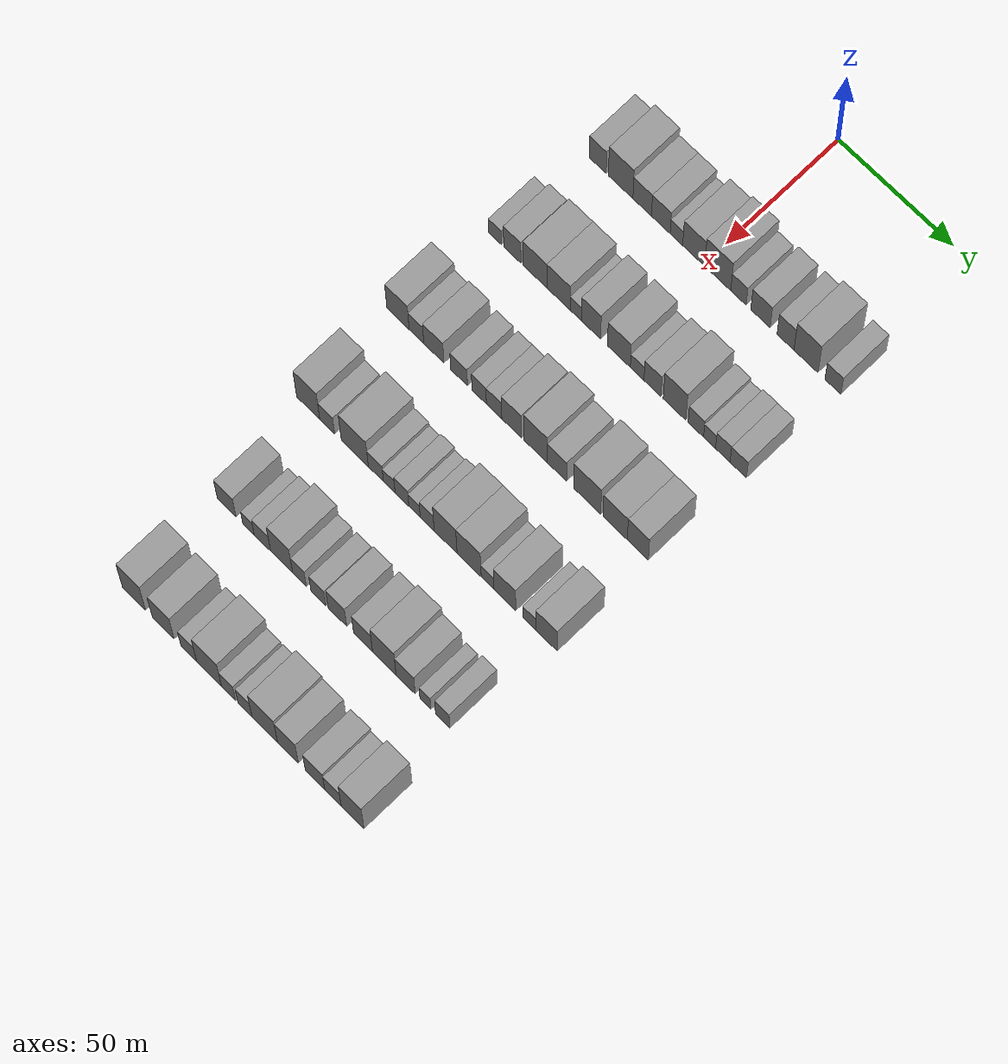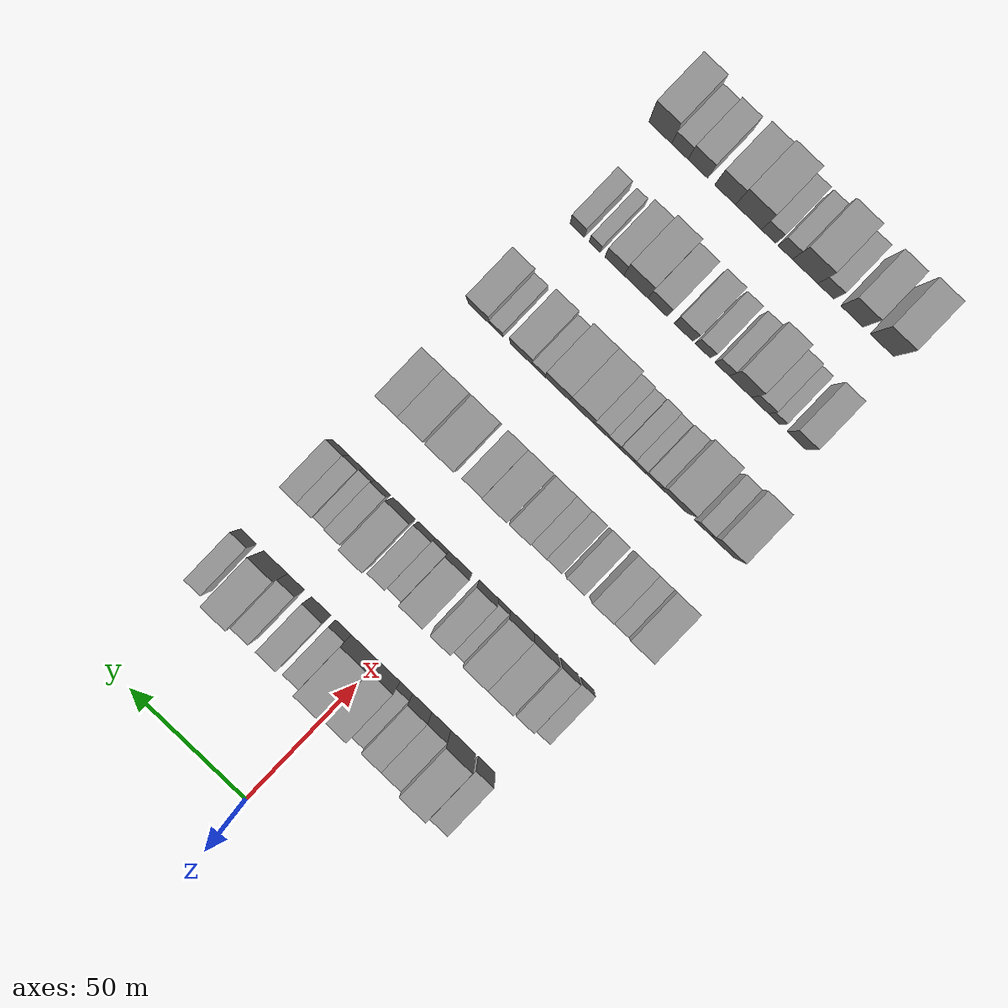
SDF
<sdf version="1.6">
 <world name="default">
  <model name="building_56">
   <static>1</static>
   <pose>50.0000 -46.7908 0 0.000000 0.000000 0.000000</pose>
   <link name="link">
    <pose>0 0 9.00 0 0 0</pose>
    <collision name="collision"><geometry><box><size>20.0000 7.4656 18.0000</size></box></geometry></collision>
    <visual name="visual">
     <cast_shadows>0</cast_shadows>
     <geometry><box><size>20.0000 7.4656 18.0000</size></box></geometry>
     <material>
      <script>
       <uri>model://grey_wall/materials/scripts</uri>
       <uri>model://grey_wall/materials/textures</uri>
       <name>vrc/grey_wall</name>
      </script>
     </material>
    </visual>
   </link>
  </model>
  <model name="building_57">
   <static>1</static>
   <pose>50.0000 -36.6233 0 0.000000 0.000000 0.000000</pose>
   <link name="link">
    <pose>0 0 12.00 0 0 0</pose>
    <collision name="collision"><geometry><box><size>20.0000 10.8695 24.0000</size></box></geometry></collision>
    <visual name="visual">
     <cast_shadows>0</cast_shadows>
     <geometry><box><size>20.0000 10.8695 24.0000</size></box></geometry>
     <material>
      <script>
       <uri>model://grey_wall/materials/scripts</uri>
       <uri>model://grey_wall/materials/textures</uri>
       <name>vrc/grey_wall</name>
      </script>
     </material>
    </visual>
   </link>
  </model>
  <model name="building_58">
   <static>1</static>
   <pose>50.0000 -27.0975 0 0.000000 0.000000 0.000000</pose>
   <link name="link">
    <pose>0 0 9.00 0 0 0</pose>
    <collision name="collision"><geometry><box><size>20.0000 8.1821 18.0000</size></box></geometry></collision>
    <visual name="visual">
     <cast_shadows>0</cast_shadows>
     <geometry><box><size>20.0000 8.1821 18.0000</size></box></geometry>
     <material>
      <script>
       <uri>model://grey_wall/materials/scripts</uri>
       <uri>model://grey_wall/materials/textures</uri>
       <name>vrc/grey_wall</name>
      </script>
     </material>
    </visual>
   </link>
  </model>
  <model name="building_59">
   <static>1</static>
   <pose>50.0000 -18.8867 0 0.000000 0.000000 0.000000</pose>
   <link name="link">
    <pose>0 0 9.00 0 0 0</pose>
    <collision name="collision"><geometry><box><size>20.0000 8.2396 18.0000</size></box></geometry></collision>
    <visual name="visual">
     <cast_shadows>0</cast_shadows>
     <geometry><box><size>20.0000 8.2396 18.0000</size></box></geometry>
     <material>
      <script>
       <uri>model://grey_wall/materials/scripts</uri>
       <uri>model://grey_wall/materials/textures</uri>
       <name>vrc/grey_wall</name>
      </script>
     </material>
    </visual>
   </link>
  </model>
  <model name="building_60">
   <static>1</static>
   <pose>50.0000 -12.0094 0 0.000000 0.000000 0.000000</pose>
   <link name="link">
    <pose>0 0 6.00 0 0 0</pose>
    <collision name="collision"><geometry><box><size>20.0000 5.5149 12.0000</size></box></geometry></collision>
    <visual name="visual">
     <cast_shadows>0</cast_shadows>
     <geometry><box><size>20.0000 5.5149 12.0000</size></box></geometry>
     <material>
      <script>
       <uri>model://grey_wall/materials/scripts</uri>
       <uri>model://grey_wall/materials/textures</uri>
       <name>vrc/grey_wall</name>
      </script>
     </material>
    </visual>
   </link>
  </model>
  <model name="building_61">
   <static>1</static>
   <pose>50.0000 -4.3880 0 0.000000 0.000000 0.000000</pose>
   <link name="link">
    <pose>0 0 10.50 0 0 0</pose>
    <collision name="collision"><geometry><box><size>20.0000 9.7278 21.0000</size></box></geometry></collision>
    <visual name="visual">
     <cast_shadows>0</cast_shadows>
     <geometry><box><size>20.0000 9.7278 21.0000</size></box></geometry>
     <material>
      <script>
       <uri>model://grey_wall/materials/scripts</uri>
       <uri>model://grey_wall/materials/textures</uri>
       <name>vrc/grey_wall</name>
      </script>
     </material>
    </visual>
   </link>
  </model>
  <model name="building_62">
   <static>1</static>
   <pose>50.0000 6.1663 0 0.000000 0.000000 0.000000</pose>
   <link name="link">
    <pose>0 0 12.00 0 0 0</pose>
    <collision name="collision"><geometry><box><size>20.0000 11.3809 24.0000</size></box></geometry></collision>
    <visual name="visual">
     <cast_shadows>0</cast_shadows>
     <geometry><box><size>20.0000 11.3809 24.0000</size></box></geometry>
     <material>
      <script>
       <uri>model://grey_wall/materials/scripts</uri>
       <uri>model://grey_wall/materials/textures</uri>
       <name>vrc/grey_wall</name>
      </script>
     </material>
    </visual>
   </link>
  </model>
  <model name="building_63">
   <static>1</static>
   <pose>50.0000 15.2102 0 0.000000 0.000000 0.000000</pose>
   <link name="link">
    <pose>0 0 7.50 0 0 0</pose>
    <collision name="collision"><geometry><box><size>20.0000 6.7068 15.0000</size></box></geometry></collision>
    <visual name="visual">
     <cast_shadows>0</cast_shadows>
     <geometry><box><size>20.0000 6.7068 15.0000</size></box></geometry>
     <material>
      <script>
       <uri>model://grey_wall/materials/scripts</uri>
       <uri>model://grey_wall/materials/textures</uri>
       <name>vrc/grey_wall</name>
      </script>
     </material>
    </visual>
   </link>
  </model>
  <model name="building_64">
   <static>1</static>
   <pose>50.0000 24.7810 0 0.000000 0.000000 0.000000</pose>
   <link name="link">
    <pose>0 0 9.00 0 0 0</pose>
    <collision name="collision"><geometry><box><size>20.0000 8.4347 18.0000</size></box></geometry></collision>
    <visual name="visual">
     <cast_shadows>0</cast_shadows>
     <geometry><box><size>20.0000 8.4347 18.0000</size></box></geometry>
     <material>
      <script>
       <uri>model://grey_wall/materials/scripts</uri>
       <uri>model://grey_wall/materials/textures</uri>
       <name>vrc/grey_wall</name>
      </script>
     </material>
    </visual>
   </link>
  </model>
  <model name="building_65">
   <static>1</static>
   <pose>50.0000 35.6688 0 0.000000 0.000000 0.000000</pose>
   <link name="link">
    <pose>0 0 9.00 0 0 0</pose>
    <collision name="collision"><geometry><box><size>20.0000 7.3410 18.0000</size></box></geometry></collision>
    <visual name="visual">
     <cast_shadows>0</cast_shadows>
     <geometry><box><size>20.0000 7.3410 18.0000</size></box></geometry>
     <material>
      <script>
       <uri>model://grey_wall/materials/scripts</uri>
       <uri>model://grey_wall/materials/textures</uri>
       <name>vrc/grey_wall</name>
      </script>
     </material>
    </visual>
   </link>
  </model>
  <model name="building_66">
   <static>1</static>
   <pose>50.0000 44.5364 0 0.000000 0.000000 0.000000</pose>
   <link name="link">
    <pose>0 0 12.00 0 0 0</pose>
    <collision name="collision"><geometry><box><size>20.0000 10.3943 24.0000</size></box></geometry></collision>
    <visual name="visual">
     <cast_shadows>0</cast_shadows>
     <geometry><box><size>20.0000 10.3943 24.0000</size></box></geometry>
     <material>
      <script>
       <uri>model://grey_wall/materials/scripts</uri>
       <uri>model://grey_wall/materials/textures</uri>
       <name>vrc/grey_wall</name>
      </script>
     </material>
    </visual>
   </link>
  </model>
  <model name="building_67">
   <static>1</static>
   <pose>50.0000 56.1799 0 0.000000 0.000000 0.000000</pose>
   <link name="link">
    <pose>0 0 7.50 0 0 0</pose>
    <collision name="collision"><geometry><box><size>20.0000 6.8926 15.0000</size></box></geometry></collision>
    <visual name="visual">
     <cast_shadows>0</cast_shadows>
     <geometry><box><size>20.0000 6.8926 15.0000</size></box></geometry>
     <material>
      <script>
       <uri>model://grey_wall/materials/scripts</uri>
       <uri>model://grey_wall/materials/textures</uri>
       <name>vrc/grey_wall</name>
      </script>
     </material>
    </visual>
   </link>
  </model>
  <model name="building_190">
   <static>1</static>
   <pose>90.0000 -51.8709 0 0.000000 0.000000 0.000000</pose>
   <link name="link">
    <pose>0 0 6.00 0 0 0</pose>
    <collision name="collision"><geometry><box><size>20.0000 5.6871 12.0000</size></box></geometry></collision>
    <visual name="visual">
     <cast_shadows>0</cast_shadows>
     <geometry><box><size>20.0000 5.6871 12.0000</size></box></geometry>
     <material>
      <script>
       <uri>model://grey_wall/materials/scripts</uri>
       <uri>model://grey_wall/materials/textures</uri>
       <name>vrc/grey_wall</name>
      </script>
     </material>
    </visual>
   </link>
  </model>
  <model name="building_191">
   <static>1</static>
   <pose>90.0000 -44.1942 0 0.000000 0.000000 0.000000</pose>
   <link name="link">
    <pose>0 0 9.00 0 0 0</pose>
    <collision name="collision"><geometry><box><size>20.0000 7.6661 18.0000</size></box></geometry></collision>
    <visual name="visual">
     <cast_shadows>0</cast_shadows>
     <geometry><box><size>20.0000 7.6661 18.0000</size></box></geometry>
     <material>
      <script>
       <uri>model://grey_wall/materials/scripts</uri>
       <uri>model://grey_wall/materials/textures</uri>
       <name>vrc/grey_wall</name>
      </script>
     </material>
    </visual>
   </link>
  </model>
  <model name="building_192">
   <static>1</static>
   <pose>90.0000 -34.1247 0 0.000000 0.000000 0.000000</pose>
   <link name="link">
    <pose>0 0 10.50 0 0 0</pose>
    <collision name="collision"><geometry><box><size>20.0000 10.4730 21.0000</size></box></geometry></collision>
    <visual name="visual">
     <cast_shadows>0</cast_shadows>
     <geometry><box><size>20.0000 10.4730 21.0000</size></box></geometry>
     <material>
      <script>
       <uri>model://grey_wall/materials/scripts</uri>
       <uri>model://grey_wall/materials/textures</uri>
       <name>vrc/grey_wall</name>
      </script>
     </material>
    </visual>
   </link>
  </model>
  <model name="building_193">
   <static>1</static>
   <pose>90.0000 -23.7587 0 0.000000 0.000000 0.000000</pose>
   <link name="link">
    <pose>0 0 10.50 0 0 0</pose>
    <collision name="collision"><geometry><box><size>20.0000 10.2590 21.0000</size></box></geometry></collision>
    <visual name="visual">
     <cast_shadows>0</cast_shadows>
     <geometry><box><size>20.0000 10.2590 21.0000</size></box></geometry>
     <material>
      <script>
       <uri>model://grey_wall/materials/scripts</uri>
       <uri>model://grey_wall/materials/textures</uri>
       <name>vrc/grey_wall</name>
      </script>
     </material>
    </visual>
   </link>
  </model>
  <model name="building_194">
   <static>1</static>
   <pose>90.0000 -16.1245 0 0.000000 0.000000 0.000000</pose>
   <link name="link">
    <pose>0 0 6.00 0 0 0</pose>
    <collision name="collision"><geometry><box><size>20.0000 5.0093 12.0000</size></box></geometry></collision>
    <visual name="visual">
     <cast_shadows>0</cast_shadows>
     <geometry><box><size>20.0000 5.0093 12.0000</size></box></geometry>
     <material>
      <script>
       <uri>model://grey_wall/materials/scripts</uri>
       <uri>model://grey_wall/materials/textures</uri>
       <name>vrc/grey_wall</name>
      </script>
     </material>
    </visual>
   </link>
  </model>
  <model name="building_195">
   <static>1</static>
   <pose>90.0000 -9.4056 0 0.000000 0.000000 0.000000</pose>
   <link name="link">
    <pose>0 0 10.50 0 0 0</pose>
    <collision name="collision"><geometry><box><size>20.0000 8.4286 21.0000</size></box></geometry></collision>
    <visual name="visual">
     <cast_shadows>0</cast_shadows>
     <geometry><box><size>20.0000 8.4286 21.0000</size></box></geometry>
     <material>
      <script>
       <uri>model://grey_wall/materials/scripts</uri>
       <uri>model://grey_wall/materials/textures</uri>
       <name>vrc/grey_wall</name>
      </script>
     </material>
    </visual>
   </link>
  </model>
  <model name="building_196">
   <static>1</static>
   <pose>90.0000 2.8158 0 0.000000 0.000000 0.000000</pose>
   <link name="link">
    <pose>0 0 10.50 0 0 0</pose>
    <collision name="collision"><geometry><box><size>20.0000 10.0142 21.0000</size></box></geometry></collision>
    <visual name="visual">
     <cast_shadows>0</cast_shadows>
     <geometry><box><size>20.0000 10.0142 21.0000</size></box></geometry>
     <material>
      <script>
       <uri>model://grey_wall/materials/scripts</uri>
       <uri>model://grey_wall/materials/textures</uri>
       <name>vrc/grey_wall</name>
      </script>
     </material>
    </visual>
   </link>
  </model>
  <model name="building_197">
   <static>1</static>
   <pose>90.0000 10.8008 0 0.000000 0.000000 0.000000</pose>
   <link name="link">
    <pose>0 0 6.00 0 0 0</pose>
    <collision name="collision"><geometry><box><size>20.0000 5.9558 12.0000</size></box></geometry></collision>
    <visual name="visual">
     <cast_shadows>0</cast_shadows>
     <geometry><box><size>20.0000 5.9558 12.0000</size></box></geometry>
     <material>
      <script>
       <uri>model://grey_wall/materials/scripts</uri>
       <uri>model://grey_wall/materials/textures</uri>
       <name>vrc/grey_wall</name>
      </script>
     </material>
    </visual>
   </link>
  </model>
  <model name="building_198">
   <static>1</static>
   <pose>90.0000 17.4751 0 0.000000 0.000000 0.000000</pose>
   <link name="link">
    <pose>0 0 9.00 0 0 0</pose>
    <collision name="collision"><geometry><box><size>20.0000 7.3929 18.0000</size></box></geometry></collision>
    <visual name="visual">
     <cast_shadows>0</cast_shadows>
     <geometry><box><size>20.0000 7.3929 18.0000</size></box></geometry>
     <material>
      <script>
       <uri>model://grey_wall/materials/scripts</uri>
       <uri>model://grey_wall/materials/textures</uri>
       <name>vrc/grey_wall</name>
      </script>
     </material>
    </visual>
   </link>
  </model>
  <model name="building_199">
   <static>1</static>
   <pose>90.0000 27.0912 0 0.000000 0.000000 0.000000</pose>
   <link name="link">
    <pose>0 0 12.00 0 0 0</pose>
    <collision name="collision"><geometry><box><size>20.0000 9.8393 24.0000</size></box></geometry></collision>
    <visual name="visual">
     <cast_shadows>0</cast_shadows>
     <geometry><box><size>20.0000 9.8393 24.0000</size></box></geometry>
     <material>
      <script>
       <uri>model://grey_wall/materials/scripts</uri>
       <uri>model://grey_wall/materials/textures</uri>
       <name>vrc/grey_wall</name>
      </script>
     </material>
    </visual>
   </link>
  </model>
  <model name="building_200">
   <static>1</static>
   <pose>90.0000 36.3533 0 0.000000 0.000000 0.000000</pose>
   <link name="link">
    <pose>0 0 7.50 0 0 0</pose>
    <collision name="collision"><geometry><box><size>20.0000 6.6849 15.0000</size></box></geometry></collision>
    <visual name="visual">
     <cast_shadows>0</cast_shadows>
     <geometry><box><size>20.0000 6.6849 15.0000</size></box></geometry>
     <material>
      <script>
       <uri>model://grey_wall/materials/scripts</uri>
       <uri>model://grey_wall/materials/textures</uri>
       <name>vrc/grey_wall</name>
      </script>
     </material>
    </visual>
   </link>
  </model>
  <model name="building_201">
   <static>1</static>
   <pose>90.0000 42.2931 0 0.000000 0.000000 0.000000</pose>
   <link name="link">
    <pose>0 0 6.00 0 0 0</pose>
    <collision name="collision"><geometry><box><size>20.0000 5.1948 12.0000</size></box></geometry></collision>
    <visual name="visual">
     <cast_shadows>0</cast_shadows>
     <geometry><box><size>20.0000 5.1948 12.0000</size></box></geometry>
     <material>
      <script>
       <uri>model://grey_wall/materials/scripts</uri>
       <uri>model://grey_wall/materials/textures</uri>
       <name>vrc/grey_wall</name>
      </script>
     </material>
    </visual>
   </link>
  </model>
  <model name="building_202">
   <static>1</static>
   <pose>90.0000 48.0219 0 0.000000 0.000000 0.000000</pose>
   <link name="link">
    <pose>0 0 7.50 0 0 0</pose>
    <collision name="collision"><geometry><box><size>20.0000 6.2629 15.0000</size></box></geometry></collision>
    <visual name="visual">
     <cast_shadows>0</cast_shadows>
     <geometry><box><size>20.0000 6.2629 15.0000</size></box></geometry>
     <material>
      <script>
       <uri>model://grey_wall/materials/scripts</uri>
       <uri>model://grey_wall/materials/textures</uri>
       <name>vrc/grey_wall</name>
      </script>
     </material>
    </visual>
   </link>
  </model>
  <model name="building_203">
   <static>1</static>
   <pose>90.0000 54.7019 0 0.000000 0.000000 0.000000</pose>
   <link name="link">
    <pose>0 0 7.50 0 0 0</pose>
    <collision name="collision"><geometry><box><size>20.0000 7.0969 15.0000</size></box></geometry></collision>
    <visual name="visual">
     <cast_shadows>0</cast_shadows>
     <geometry><box><size>20.0000 7.0969 15.0000</size></box></geometry>
     <material>
      <script>
       <uri>model://grey_wall/materials/scripts</uri>
       <uri>model://grey_wall/materials/textures</uri>
       <name>vrc/grey_wall</name>
      </script>
     </material>
    </visual>
   </link>
  </model>
  <model name="building_322">
   <static>1</static>
   <pose>130.0000 -54.0288 0 0.000000 0.000000 0.000000</pose>
   <link name="link">
    <pose>0 0 10.50 0 0 0</pose>
    <collision name="collision"><geometry><box><size>20.0000 9.9455 21.0000</size></box></geometry></collision>
    <visual name="visual">
     <cast_shadows>0</cast_shadows>
     <geometry><box><size>20.0000 9.9455 21.0000</size></box></geometry>
     <material>
      <script>
       <uri>model://grey_wall/materials/scripts</uri>
       <uri>model://grey_wall/materials/textures</uri>
       <name>vrc/grey_wall</name>
      </script>
     </material>
    </visual>
   </link>
  </model>
  <model name="building_323">
   <static>1</static>
   <pose>130.0000 -45.8109 0 0.000000 0.000000 0.000000</pose>
   <link name="link">
    <pose>0 0 7.50 0 0 0</pose>
    <collision name="collision"><geometry><box><size>20.0000 6.4904 15.0000</size></box></geometry></collision>
    <visual name="visual">
     <cast_shadows>0</cast_shadows>
     <geometry><box><size>20.0000 6.4904 15.0000</size></box></geometry>
     <material>
      <script>
       <uri>model://grey_wall/materials/scripts</uri>
       <uri>model://grey_wall/materials/textures</uri>
       <name>vrc/grey_wall</name>
      </script>
     </material>
    </visual>
   </link>
  </model>
  <model name="building_324">
   <static>1</static>
   <pose>130.0000 -38.0900 0 0.000000 0.000000 0.000000</pose>
   <link name="link">
    <pose>0 0 9.00 0 0 0</pose>
    <collision name="collision"><geometry><box><size>20.0000 8.9514 18.0000</size></box></geometry></collision>
    <visual name="visual">
     <cast_shadows>0</cast_shadows>
     <geometry><box><size>20.0000 8.9514 18.0000</size></box></geometry>
     <material>
      <script>
       <uri>model://grey_wall/materials/scripts</uri>
       <uri>model://grey_wall/materials/textures</uri>
       <name>vrc/grey_wall</name>
      </script>
     </material>
    </visual>
   </link>
  </model>
  <model name="building_325">
   <static>1</static>
   <pose>130.0000 -26.8908 0 0.000000 0.000000 0.000000</pose>
   <link name="link">
    <pose>0 0 7.50 0 0 0</pose>
    <collision name="collision"><geometry><box><size>20.0000 7.4471 15.0000</size></box></geometry></collision>
    <visual name="visual">
     <cast_shadows>0</cast_shadows>
     <geometry><box><size>20.0000 7.4471 15.0000</size></box></geometry>
     <material>
      <script>
       <uri>model://grey_wall/materials/scripts</uri>
       <uri>model://grey_wall/materials/textures</uri>
       <name>vrc/grey_wall</name>
      </script>
     </material>
    </visual>
   </link>
  </model>
  <model name="building_326">
   <static>1</static>
   <pose>130.0000 -18.0031 0 0.000000 0.000000 0.000000</pose>
   <link name="link">
    <pose>0 0 7.50 0 0 0</pose>
    <collision name="collision"><geometry><box><size>20.0000 6.3282 15.0000</size></box></geometry></collision>
    <visual name="visual">
     <cast_shadows>0</cast_shadows>
     <geometry><box><size>20.0000 6.3282 15.0000</size></box></geometry>
     <material>
      <script>
       <uri>model://grey_wall/materials/scripts</uri>
       <uri>model://grey_wall/materials/textures</uri>
       <name>vrc/grey_wall</name>
      </script>
     </material>
    </visual>
   </link>
  </model>
  <model name="building_327">
   <static>1</static>
   <pose>130.0000 -11.4498 0 0.000000 0.000000 0.000000</pose>
   <link name="link">
    <pose>0 0 7.50 0 0 0</pose>
    <collision name="collision"><geometry><box><size>20.0000 6.7784 15.0000</size></box></geometry></collision>
    <visual name="visual">
     <cast_shadows>0</cast_shadows>
     <geometry><box><size>20.0000 6.7784 15.0000</size></box></geometry>
     <material>
      <script>
       <uri>model://grey_wall/materials/scripts</uri>
       <uri>model://grey_wall/materials/textures</uri>
       <name>vrc/grey_wall</name>
      </script>
     </material>
    </visual>
   </link>
  </model>
  <model name="building_328">
   <static>1</static>
   <pose>130.0000 -3.7244 0 0.000000 0.000000 0.000000</pose>
   <link name="link">
    <pose>0 0 10.50 0 0 0</pose>
    <collision name="collision"><geometry><box><size>20.0000 8.6724 21.0000</size></box></geometry></collision>
    <visual name="visual">
     <cast_shadows>0</cast_shadows>
     <geometry><box><size>20.0000 8.6724 21.0000</size></box></geometry>
     <material>
      <script>
       <uri>model://grey_wall/materials/scripts</uri>
       <uri>model://grey_wall/materials/textures</uri>
       <name>vrc/grey_wall</name>
      </script>
     </material>
    </visual>
   </link>
  </model>
  <model name="building_329">
   <static>1</static>
   <pose>130.0000 6.7602 0 0.000000 0.000000 0.000000</pose>
   <link name="link">
    <pose>0 0 12.00 0 0 0</pose>
    <collision name="collision"><geometry><box><size>20.0000 10.2969 24.0000</size></box></geometry></collision>
    <visual name="visual">
     <cast_shadows>0</cast_shadows>
     <geometry><box><size>20.0000 10.2969 24.0000</size></box></geometry>
     <material>
      <script>
       <uri>model://grey_wall/materials/scripts</uri>
       <uri>model://grey_wall/materials/textures</uri>
       <name>vrc/grey_wall</name>
      </script>
     </material>
    </visual>
   </link>
  </model>
  <model name="building_330">
   <static>1</static>
   <pose>130.0000 16.1102 0 0.000000 0.000000 0.000000</pose>
   <link name="link">
    <pose>0 0 9.00 0 0 0</pose>
    <collision name="collision"><geometry><box><size>20.0000 8.4030 18.0000</size></box></geometry></collision>
    <visual name="visual">
     <cast_shadows>0</cast_shadows>
     <geometry><box><size>20.0000 8.4030 18.0000</size></box></geometry>
     <material>
      <script>
       <uri>model://grey_wall/materials/scripts</uri>
       <uri>model://grey_wall/materials/textures</uri>
       <name>vrc/grey_wall</name>
      </script>
     </material>
    </visual>
   </link>
  </model>
  <model name="building_331">
   <static>1</static>
   <pose>130.0000 29.2352 0 0.000000 0.000000 0.000000</pose>
   <link name="link">
    <pose>0 0 12.00 0 0 0</pose>
    <collision name="collision"><geometry><box><size>20.0000 11.8470 24.0000</size></box></geometry></collision>
    <visual name="visual">
     <cast_shadows>0</cast_shadows>
     <geometry><box><size>20.0000 11.8470 24.0000</size></box></geometry>
     <material>
      <script>
       <uri>model://grey_wall/materials/scripts</uri>
       <uri>model://grey_wall/materials/textures</uri>
       <name>vrc/grey_wall</name>
      </script>
     </material>
    </visual>
   </link>
  </model>
  <model name="building_332">
   <static>1</static>
   <pose>130.0000 41.4085 0 0.000000 0.000000 0.000000</pose>
   <link name="link">
    <pose>0 0 10.50 0 0 0</pose>
    <collision name="collision"><geometry><box><size>20.0000 10.4996 21.0000</size></box></geometry></collision>
    <visual name="visual">
     <cast_shadows>0</cast_shadows>
     <geometry><box><size>20.0000 10.4996 21.0000</size></box></geometry>
     <material>
      <script>
       <uri>model://grey_wall/materials/scripts</uri>
       <uri>model://grey_wall/materials/textures</uri>
       <name>vrc/grey_wall</name>
      </script>
     </material>
    </visual>
   </link>
  </model>
  <model name="building_333">
   <static>1</static>
   <pose>130.0000 51.2149 0 0.000000 0.000000 0.000000</pose>
   <link name="link">
    <pose>0 0 10.50 0 0 0</pose>
    <collision name="collision"><geometry><box><size>20.0000 9.1131 21.0000</size></box></geometry></collision>
    <visual name="visual">
     <cast_shadows>0</cast_shadows>
     <geometry><box><size>20.0000 9.1131 21.0000</size></box></geometry>
     <material>
      <script>
       <uri>model://grey_wall/materials/scripts</uri>
       <uri>model://grey_wall/materials/textures</uri>
       <name>vrc/grey_wall</name>
      </script>
     </material>
    </visual>
   </link>
  </model>
  <model name="building_462">
   <static>1</static>
   <pose>170.0000 -52.4092 0 0.000000 0.000000 0.000000</pose>
   <link name="link">
    <pose>0 0 12.00 0 0 0</pose>
    <collision name="collision"><geometry><box><size>20.0000 10.2825 24.0000</size></box></geometry></collision>
    <visual name="visual">
     <cast_shadows>0</cast_shadows>
     <geometry><box><size>20.0000 10.2825 24.0000</size></box></geometry>
     <material>
      <script>
       <uri>model://grey_wall/materials/scripts</uri>
       <uri>model://grey_wall/materials/textures</uri>
       <name>vrc/grey_wall</name>
      </script>
     </material>
    </visual>
   </link>
  </model>
  <model name="building_463">
   <static>1</static>
   <pose>170.0000 -43.9695 0 0.000000 0.000000 0.000000</pose>
   <link name="link">
    <pose>0 0 7.50 0 0 0</pose>
    <collision name="collision"><geometry><box><size>20.0000 6.5968 15.0000</size></box></geometry></collision>
    <visual name="visual">
     <cast_shadows>0</cast_shadows>
     <geometry><box><size>20.0000 6.5968 15.0000</size></box></geometry>
     <material>
      <script>
       <uri>model://grey_wall/materials/scripts</uri>
       <uri>model://grey_wall/materials/textures</uri>
       <name>vrc/grey_wall</name>
      </script>
     </material>
    </visual>
   </link>
  </model>
  <model name="building_464">
   <static>1</static>
   <pose>170.0000 -31.6767 0 0.000000 0.000000 0.000000</pose>
   <link name="link">
    <pose>0 0 12.00 0 0 0</pose>
    <collision name="collision"><geometry><box><size>20.0000 11.9888 24.0000</size></box></geometry></collision>
    <visual name="visual">
     <cast_shadows>0</cast_shadows>
     <geometry><box><size>20.0000 11.9888 24.0000</size></box></geometry>
     <material>
      <script>
       <uri>model://grey_wall/materials/scripts</uri>
       <uri>model://grey_wall/materials/textures</uri>
       <name>vrc/grey_wall</name>
      </script>
     </material>
    </visual>
   </link>
  </model>
  <model name="building_465">
   <static>1</static>
   <pose>170.0000 -22.3794 0 0.000000 0.000000 0.000000</pose>
   <link name="link">
    <pose>0 0 7.50 0 0 0</pose>
    <collision name="collision"><geometry><box><size>20.0000 6.6057 15.0000</size></box></geometry></collision>
    <visual name="visual">
     <cast_shadows>0</cast_shadows>
     <geometry><box><size>20.0000 6.6057 15.0000</size></box></geometry>
     <material>
      <script>
       <uri>model://grey_wall/materials/scripts</uri>
       <uri>model://grey_wall/materials/textures</uri>
       <name>vrc/grey_wall</name>
      </script>
     </material>
    </visual>
   </link>
  </model>
  <model name="building_466">
   <static>1</static>
   <pose>170.0000 -16.4990 0 0.000000 0.000000 0.000000</pose>
   <link name="link">
    <pose>0 0 6.00 0 0 0</pose>
    <collision name="collision"><geometry><box><size>20.0000 5.1552 12.0000</size></box></geometry></collision>
    <visual name="visual">
     <cast_shadows>0</cast_shadows>
     <geometry><box><size>20.0000 5.1552 12.0000</size></box></geometry>
     <material>
      <script>
       <uri>model://grey_wall/materials/scripts</uri>
       <uri>model://grey_wall/materials/textures</uri>
       <name>vrc/grey_wall</name>
      </script>
     </material>
    </visual>
   </link>
  </model>
  <model name="building_467">
   <static>1</static>
   <pose>170.0000 -10.8820 0 0.000000 0.000000 0.000000</pose>
   <link name="link">
    <pose>0 0 7.50 0 0 0</pose>
    <collision name="collision"><geometry><box><size>20.0000 6.0787 15.0000</size></box></geometry></collision>
    <visual name="visual">
     <cast_shadows>0</cast_shadows>
     <geometry><box><size>20.0000 6.0787 15.0000</size></box></geometry>
     <material>
      <script>
       <uri>model://grey_wall/materials/scripts</uri>
       <uri>model://grey_wall/materials/textures</uri>
       <name>vrc/grey_wall</name>
      </script>
     </material>
    </visual>
   </link>
  </model>
  <model name="building_468">
   <static>1</static>
   <pose>170.0000 -5.3561 0 0.000000 0.000000 0.000000</pose>
   <link name="link">
    <pose>0 0 6.00 0 0 0</pose>
    <collision name="collision"><geometry><box><size>20.0000 4.9733 12.0000</size></box></geometry></collision>
    <visual name="visual">
     <cast_shadows>0</cast_shadows>
     <geometry><box><size>20.0000 4.9733 12.0000</size></box></geometry>
     <material>
      <script>
       <uri>model://grey_wall/materials/scripts</uri>
       <uri>model://grey_wall/materials/textures</uri>
       <name>vrc/grey_wall</name>
      </script>
     </material>
    </visual>
   </link>
  </model>
  <model name="building_469">
   <static>1</static>
   <pose>170.0000 0.2132 0 0.000000 0.000000 0.000000</pose>
   <link name="link">
    <pose>0 0 7.50 0 0 0</pose>
    <collision name="collision"><geometry><box><size>20.0000 6.1653 15.0000</size></box></geometry></collision>
    <visual name="visual">
     <cast_shadows>0</cast_shadows>
     <geometry><box><size>20.0000 6.1653 15.0000</size></box></geometry>
     <material>
      <script>
       <uri>model://grey_wall/materials/scripts</uri>
       <uri>model://grey_wall/materials/textures</uri>
       <name>vrc/grey_wall</name>
      </script>
     </material>
    </visual>
   </link>
  </model>
  <model name="building_470">
   <static>1</static>
   <pose>170.0000 8.2846 0 0.000000 0.000000 0.000000</pose>
   <link name="link">
    <pose>0 0 12.00 0 0 0</pose>
    <collision name="collision"><geometry><box><size>20.0000 9.9775 24.0000</size></box></geometry></collision>
    <visual name="visual">
     <cast_shadows>0</cast_shadows>
     <geometry><box><size>20.0000 9.9775 24.0000</size></box></geometry>
     <material>
      <script>
       <uri>model://grey_wall/materials/scripts</uri>
       <uri>model://grey_wall/materials/textures</uri>
       <name>vrc/grey_wall</name>
      </script>
     </material>
    </visual>
   </link>
  </model>
  <model name="building_471">
   <static>1</static>
   <pose>170.0000 18.5358 0 0.000000 0.000000 0.000000</pose>
   <link name="link">
    <pose>0 0 12.00 0 0 0</pose>
    <collision name="collision"><geometry><box><size>20.0000 10.5247 24.0000</size></box></geometry></collision>
    <visual name="visual">
     <cast_shadows>0</cast_shadows>
     <geometry><box><size>20.0000 10.5247 24.0000</size></box></geometry>
     <material>
      <script>
       <uri>model://grey_wall/materials/scripts</uri>
       <uri>model://grey_wall/materials/textures</uri>
       <name>vrc/grey_wall</name>
      </script>
     </material>
    </visual>
   </link>
  </model>
  <model name="building_472">
   <static>1</static>
   <pose>170.0000 26.5891 0 0.000000 0.000000 0.000000</pose>
   <link name="link">
    <pose>0 0 6.00 0 0 0</pose>
    <collision name="collision"><geometry><box><size>20.0000 5.5819 12.0000</size></box></geometry></collision>
    <visual name="visual">
     <cast_shadows>0</cast_shadows>
     <geometry><box><size>20.0000 5.5819 12.0000</size></box></geometry>
     <material>
      <script>
       <uri>model://grey_wall/materials/scripts</uri>
       <uri>model://grey_wall/materials/textures</uri>
       <name>vrc/grey_wall</name>
      </script>
     </material>
    </visual>
   </link>
  </model>
  <model name="building_473">
   <static>1</static>
   <pose>170.0000 34.1348 0 0.000000 0.000000 0.000000</pose>
   <link name="link">
    <pose>0 0 10.50 0 0 0</pose>
    <collision name="collision"><geometry><box><size>20.0000 9.5096 21.0000</size></box></geometry></collision>
    <visual name="visual">
     <cast_shadows>0</cast_shadows>
     <geometry><box><size>20.0000 9.5096 21.0000</size></box></geometry>
     <material>
      <script>
       <uri>model://grey_wall/materials/scripts</uri>
       <uri>model://grey_wall/materials/textures</uri>
       <name>vrc/grey_wall</name>
      </script>
     </material>
    </visual>
   </link>
  </model>
  <model name="building_474">
   <static>1</static>
   <pose>170.0000 44.7377 0 0.000000 0.000000 0.000000</pose>
   <link name="link">
    <pose>0 0 6.00 0 0 0</pose>
    <collision name="collision"><geometry><box><size>20.0000 5.6963 12.0000</size></box></geometry></collision>
    <visual name="visual">
     <cast_shadows>0</cast_shadows>
     <geometry><box><size>20.0000 5.6963 12.0000</size></box></geometry>
     <material>
      <script>
       <uri>model://grey_wall/materials/scripts</uri>
       <uri>model://grey_wall/materials/textures</uri>
       <name>vrc/grey_wall</name>
      </script>
     </material>
    </visual>
   </link>
  </model>
  <model name="building_475">
   <static>1</static>
   <pose>170.0000 52.2009 0 0.000000 0.000000 0.000000</pose>
   <link name="link">
    <pose>0 0 10.50 0 0 0</pose>
    <collision name="collision"><geometry><box><size>20.0000 9.2301 21.0000</size></box></geometry></collision>
    <visual name="visual">
     <cast_shadows>0</cast_shadows>
     <geometry><box><size>20.0000 9.2301 21.0000</size></box></geometry>
     <material>
      <script>
       <uri>model://grey_wall/materials/scripts</uri>
       <uri>model://grey_wall/materials/textures</uri>
       <name>vrc/grey_wall</name>
      </script>
     </material>
    </visual>
   </link>
  </model>
  <model name="building_603">
   <static>1</static>
   <pose>210.0000 -46.6478 0 0.000000 0.000000 0.000000</pose>
   <link name="link">
    <pose>0 0 9.00 0 0 0</pose>
    <collision name="collision"><geometry><box><size>20.0000 8.3199 18.0000</size></box></geometry></collision>
    <visual name="visual">
     <cast_shadows>0</cast_shadows>
     <geometry><box><size>20.0000 8.3199 18.0000</size></box></geometry>
     <material>
      <script>
       <uri>model://grey_wall/materials/scripts</uri>
       <uri>model://grey_wall/materials/textures</uri>
       <name>vrc/grey_wall</name>
      </script>
     </material>
    </visual>
   </link>
  </model>
  <model name="building_604">
   <static>1</static>
   <pose>210.0000 -36.9744 0 0.000000 0.000000 0.000000</pose>
   <link name="link">
    <pose>0 0 6.00 0 0 0</pose>
    <collision name="collision"><geometry><box><size>20.0000 5.0269 12.0000</size></box></geometry></collision>
    <visual name="visual">
     <cast_shadows>0</cast_shadows>
     <geometry><box><size>20.0000 5.0269 12.0000</size></box></geometry>
     <material>
      <script>
       <uri>model://grey_wall/materials/scripts</uri>
       <uri>model://grey_wall/materials/textures</uri>
       <name>vrc/grey_wall</name>
      </script>
     </material>
    </visual>
   </link>
  </model>
  <model name="building_605">
   <static>1</static>
   <pose>210.0000 -30.8043 0 0.000000 0.000000 0.000000</pose>
   <link name="link">
    <pose>0 0 7.50 0 0 0</pose>
    <collision name="collision"><geometry><box><size>20.0000 7.3132 15.0000</size></box></geometry></collision>
    <visual name="visual">
     <cast_shadows>0</cast_shadows>
     <geometry><box><size>20.0000 7.3132 15.0000</size></box></geometry>
     <material>
      <script>
       <uri>model://grey_wall/materials/scripts</uri>
       <uri>model://grey_wall/materials/textures</uri>
       <name>vrc/grey_wall</name>
      </script>
     </material>
    </visual>
   </link>
  </model>
  <model name="building_606">
   <static>1</static>
   <pose>210.0000 -22.2586 0 0.000000 0.000000 0.000000</pose>
   <link name="link">
    <pose>0 0 12.00 0 0 0</pose>
    <collision name="collision"><geometry><box><size>20.0000 9.7783 24.0000</size></box></geometry></collision>
    <visual name="visual">
     <cast_shadows>0</cast_shadows>
     <geometry><box><size>20.0000 9.7783 24.0000</size></box></geometry>
     <material>
      <script>
       <uri>model://grey_wall/materials/scripts</uri>
       <uri>model://grey_wall/materials/textures</uri>
       <name>vrc/grey_wall</name>
      </script>
     </material>
    </visual>
   </link>
  </model>
  <model name="building_607">
   <static>1</static>
   <pose>210.0000 -14.3473 0 0.000000 0.000000 0.000000</pose>
   <link name="link">
    <pose>0 0 7.50 0 0 0</pose>
    <collision name="collision"><geometry><box><size>20.0000 6.0444 15.0000</size></box></geometry></collision>
    <visual name="visual">
     <cast_shadows>0</cast_shadows>
     <geometry><box><size>20.0000 6.0444 15.0000</size></box></geometry>
     <material>
      <script>
       <uri>model://grey_wall/materials/scripts</uri>
       <uri>model://grey_wall/materials/textures</uri>
       <name>vrc/grey_wall</name>
      </script>
     </material>
    </visual>
   </link>
  </model>
  <model name="building_608">
   <static>1</static>
   <pose>210.0000 -6.0418 0 0.000000 0.000000 0.000000</pose>
   <link name="link">
    <pose>0 0 7.50 0 0 0</pose>
    <collision name="collision"><geometry><box><size>20.0000 6.5665 15.0000</size></box></geometry></collision>
    <visual name="visual">
     <cast_shadows>0</cast_shadows>
     <geometry><box><size>20.0000 6.5665 15.0000</size></box></geometry>
     <material>
      <script>
       <uri>model://grey_wall/materials/scripts</uri>
       <uri>model://grey_wall/materials/textures</uri>
       <name>vrc/grey_wall</name>
      </script>
     </material>
    </visual>
   </link>
  </model>
  <model name="building_609">
   <static>1</static>
   <pose>210.0000 2.3068 0 0.000000 0.000000 0.000000</pose>
   <link name="link">
    <pose>0 0 9.00 0 0 0</pose>
    <collision name="collision"><geometry><box><size>20.0000 8.1308 18.0000</size></box></geometry></collision>
    <visual name="visual">
     <cast_shadows>0</cast_shadows>
     <geometry><box><size>20.0000 8.1308 18.0000</size></box></geometry>
     <material>
      <script>
       <uri>model://grey_wall/materials/scripts</uri>
       <uri>model://grey_wall/materials/textures</uri>
       <name>vrc/grey_wall</name>
      </script>
     </material>
    </visual>
   </link>
  </model>
  <model name="building_610">
   <static>1</static>
   <pose>210.0000 13.5342 0 0.000000 0.000000 0.000000</pose>
   <link name="link">
    <pose>0 0 9.00 0 0 0</pose>
    <collision name="collision"><geometry><box><size>20.0000 8.3239 18.0000</size></box></geometry></collision>
    <visual name="visual">
     <cast_shadows>0</cast_shadows>
     <geometry><box><size>20.0000 8.3239 18.0000</size></box></geometry>
     <material>
      <script>
       <uri>model://grey_wall/materials/scripts</uri>
       <uri>model://grey_wall/materials/textures</uri>
       <name>vrc/grey_wall</name>
      </script>
     </material>
    </visual>
   </link>
  </model>
  <model name="building_611">
   <static>1</static>
   <pose>210.0000 22.8304 0 0.000000 0.000000 0.000000</pose>
   <link name="link">
    <pose>0 0 12.00 0 0 0</pose>
    <collision name="collision"><geometry><box><size>20.0000 10.2686 24.0000</size></box></geometry></collision>
    <visual name="visual">
     <cast_shadows>0</cast_shadows>
     <geometry><box><size>20.0000 10.2686 24.0000</size></box></geometry>
     <material>
      <script>
       <uri>model://grey_wall/materials/scripts</uri>
       <uri>model://grey_wall/materials/textures</uri>
       <name>vrc/grey_wall</name>
      </script>
     </material>
    </visual>
   </link>
  </model>
  <model name="building_612">
   <static>1</static>
   <pose>210.0000 32.1109 0 0.000000 0.000000 0.000000</pose>
   <link name="link">
    <pose>0 0 9.00 0 0 0</pose>
    <collision name="collision"><geometry><box><size>20.0000 8.2925 18.0000</size></box></geometry></collision>
    <visual name="visual">
     <cast_shadows>0</cast_shadows>
     <geometry><box><size>20.0000 8.2925 18.0000</size></box></geometry>
     <material>
      <script>
       <uri>model://grey_wall/materials/scripts</uri>
       <uri>model://grey_wall/materials/textures</uri>
       <name>vrc/grey_wall</name>
      </script>
     </material>
    </visual>
   </link>
  </model>
  <model name="building_613">
   <static>1</static>
   <pose>210.0000 40.6596 0 0.000000 0.000000 0.000000</pose>
   <link name="link">
    <pose>0 0 6.00 0 0 0</pose>
    <collision name="collision"><geometry><box><size>20.0000 4.8049 12.0000</size></box></geometry></collision>
    <visual name="visual">
     <cast_shadows>0</cast_shadows>
     <geometry><box><size>20.0000 4.8049 12.0000</size></box></geometry>
     <material>
      <script>
       <uri>model://grey_wall/materials/scripts</uri>
       <uri>model://grey_wall/materials/textures</uri>
       <name>vrc/grey_wall</name>
      </script>
     </material>
    </visual>
   </link>
  </model>
  <model name="building_614">
   <static>1</static>
   <pose>210.0000 48.1698 0 0.000000 0.000000 0.000000</pose>
   <link name="link">
    <pose>0 0 7.50 0 0 0</pose>
    <collision name="collision"><geometry><box><size>20.0000 6.2153 15.0000</size></box></geometry></collision>
    <visual name="visual">
     <cast_shadows>0</cast_shadows>
     <geometry><box><size>20.0000 6.2153 15.0000</size></box></geometry>
     <material>
      <script>
       <uri>model://grey_wall/materials/scripts</uri>
       <uri>model://grey_wall/materials/textures</uri>
       <name>vrc/grey_wall</name>
      </script>
     </material>
    </visual>
   </link>
  </model>
  <model name="building_743">
   <static>1</static>
   <pose>250.0000 -45.3119 0 0.000000 0.000000 0.000000</pose>
   <link name="link">
    <pose>0 0 12.00 0 0 0</pose>
    <collision name="collision"><geometry><box><size>20.0000 10.2757 24.0000</size></box></geometry></collision>
    <visual name="visual">
     <cast_shadows>0</cast_shadows>
     <geometry><box><size>20.0000 10.2757 24.0000</size></box></geometry>
     <material>
      <script>
       <uri>model://grey_wall/materials/scripts</uri>
       <uri>model://grey_wall/materials/textures</uri>
       <name>vrc/grey_wall</name>
      </script>
     </material>
    </visual>
   </link>
  </model>
  <model name="building_744">
   <static>1</static>
   <pose>250.0000 -32.3332 0 0.000000 0.000000 0.000000</pose>
   <link name="link">
    <pose>0 0 10.50 0 0 0</pose>
    <collision name="collision"><geometry><box><size>20.0000 9.6819 21.0000</size></box></geometry></collision>
    <visual name="visual">
     <cast_shadows>0</cast_shadows>
     <geometry><box><size>20.0000 9.6819 21.0000</size></box></geometry>
     <material>
      <script>
       <uri>model://grey_wall/materials/scripts</uri>
       <uri>model://grey_wall/materials/textures</uri>
       <name>vrc/grey_wall</name>
      </script>
     </material>
    </visual>
   </link>
  </model>
  <model name="building_745">
   <static>1</static>
   <pose>250.0000 -21.0051 0 0.000000 0.000000 0.000000</pose>
   <link name="link">
    <pose>0 0 7.50 0 0 0</pose>
    <collision name="collision"><geometry><box><size>20.0000 6.9742 15.0000</size></box></geometry></collision>
    <visual name="visual">
     <cast_shadows>0</cast_shadows>
     <geometry><box><size>20.0000 6.9742 15.0000</size></box></geometry>
     <material>
      <script>
       <uri>model://grey_wall/materials/scripts</uri>
       <uri>model://grey_wall/materials/textures</uri>
       <name>vrc/grey_wall</name>
      </script>
     </material>
    </visual>
   </link>
  </model>
  <model name="building_746">
   <static>1</static>
   <pose>250.0000 -12.0312 0 0.000000 0.000000 0.000000</pose>
   <link name="link">
    <pose>0 0 12.00 0 0 0</pose>
    <collision name="collision"><geometry><box><size>20.0000 10.9735 24.0000</size></box></geometry></collision>
    <visual name="visual">
     <cast_shadows>0</cast_shadows>
     <geometry><box><size>20.0000 10.9735 24.0000</size></box></geometry>
     <material>
      <script>
       <uri>model://grey_wall/materials/scripts</uri>
       <uri>model://grey_wall/materials/textures</uri>
       <name>vrc/grey_wall</name>
      </script>
     </material>
    </visual>
   </link>
  </model>
  <model name="building_747">
   <static>1</static>
   <pose>250.0000 -3.4497 0 0.000000 0.000000 0.000000</pose>
   <link name="link">
    <pose>0 0 7.50 0 0 0</pose>
    <collision name="collision"><geometry><box><size>20.0000 6.1895 15.0000</size></box></geometry></collision>
    <visual name="visual">
     <cast_shadows>0</cast_shadows>
     <geometry><box><size>20.0000 6.1895 15.0000</size></box></geometry>
     <material>
      <script>
       <uri>model://grey_wall/materials/scripts</uri>
       <uri>model://grey_wall/materials/textures</uri>
       <name>vrc/grey_wall</name>
      </script>
     </material>
    </visual>
   </link>
  </model>
  <model name="building_748">
   <static>1</static>
   <pose>250.0000 3.7450 0 0.000000 0.000000 0.000000</pose>
   <link name="link">
    <pose>0 0 7.50 0 0 0</pose>
    <collision name="collision"><geometry><box><size>20.0000 6.2001 15.0000</size></box></geometry></collision>
    <visual name="visual">
     <cast_shadows>0</cast_shadows>
     <geometry><box><size>20.0000 6.2001 15.0000</size></box></geometry>
     <material>
      <script>
       <uri>model://grey_wall/materials/scripts</uri>
       <uri>model://grey_wall/materials/textures</uri>
       <name>vrc/grey_wall</name>
      </script>
     </material>
    </visual>
   </link>
  </model>
  <model name="building_749">
   <static>1</static>
   <pose>250.0000 12.4376 0 0.000000 0.000000 0.000000</pose>
   <link name="link">
    <pose>0 0 12.00 0 0 0</pose>
    <collision name="collision"><geometry><box><size>20.0000 11.1851 24.0000</size></box></geometry></collision>
    <visual name="visual">
     <cast_shadows>0</cast_shadows>
     <geometry><box><size>20.0000 11.1851 24.0000</size></box></geometry>
     <material>
      <script>
       <uri>model://grey_wall/materials/scripts</uri>
       <uri>model://grey_wall/materials/textures</uri>
       <name>vrc/grey_wall</name>
      </script>
     </material>
    </visual>
   </link>
  </model>
  <model name="building_750">
   <static>1</static>
   <pose>250.0000 22.5519 0 0.000000 0.000000 0.000000</pose>
   <link name="link">
    <pose>0 0 10.50 0 0 0</pose>
    <collision name="collision"><geometry><box><size>20.0000 9.0434 21.0000</size></box></geometry></collision>
    <visual name="visual">
     <cast_shadows>0</cast_shadows>
     <geometry><box><size>20.0000 9.0434 21.0000</size></box></geometry>
     <material>
      <script>
       <uri>model://grey_wall/materials/scripts</uri>
       <uri>model://grey_wall/materials/textures</uri>
       <name>vrc/grey_wall</name>
      </script>
     </material>
    </visual>
   </link>
  </model>
  <model name="building_751">
   <static>1</static>
   <pose>250.0000 34.3048 0 0.000000 0.000000 0.000000</pose>
   <link name="link">
    <pose>0 0 9.00 0 0 0</pose>
    <collision name="collision"><geometry><box><size>20.0000 8.4625 18.0000</size></box></geometry></collision>
    <visual name="visual">
     <cast_shadows>0</cast_shadows>
     <geometry><box><size>20.0000 8.4625 18.0000</size></box></geometry>
     <material>
      <script>
       <uri>model://grey_wall/materials/scripts</uri>
       <uri>model://grey_wall/materials/textures</uri>
       <name>vrc/grey_wall</name>
      </script>
     </material>
    </visual>
   </link>
  </model>
  <model name="building_752">
   <static>1</static>
   <pose>250.0000 42.1218 0 0.000000 0.000000 0.000000</pose>
   <link name="link">
    <pose>0 0 7.50 0 0 0</pose>
    <collision name="collision"><geometry><box><size>20.0000 7.1716 15.0000</size></box></geometry></collision>
    <visual name="visual">
     <cast_shadows>0</cast_shadows>
     <geometry><box><size>20.0000 7.1716 15.0000</size></box></geometry>
     <material>
      <script>
       <uri>model://grey_wall/materials/scripts</uri>
       <uri>model://grey_wall/materials/textures</uri>
       <name>vrc/grey_wall</name>
      </script>
     </material>
    </visual>
   </link>
  </model>
  <model name="building_753">
   <static>1</static>
   <pose>250.0000 50.6149 0 0.000000 0.000000 0.000000</pose>
   <link name="link">
    <pose>0 0 12.00 0 0 0</pose>
    <collision name="collision"><geometry><box><size>20.0000 9.8145 24.0000</size></box></geometry></collision>
    <visual name="visual">
     <cast_shadows>0</cast_shadows>
     <geometry><box><size>20.0000 9.8145 24.0000</size></box></geometry>
     <material>
      <script>
       <uri>model://grey_wall/materials/scripts</uri>
       <uri>model://grey_wall/materials/textures</uri>
       <name>vrc/grey_wall</name>
      </script>
     </material>
    </visual>
   </link>
  </model>
 </world>
</sdf>
